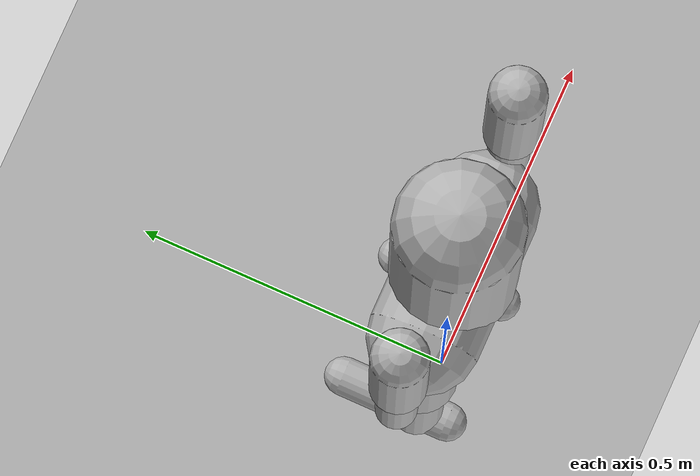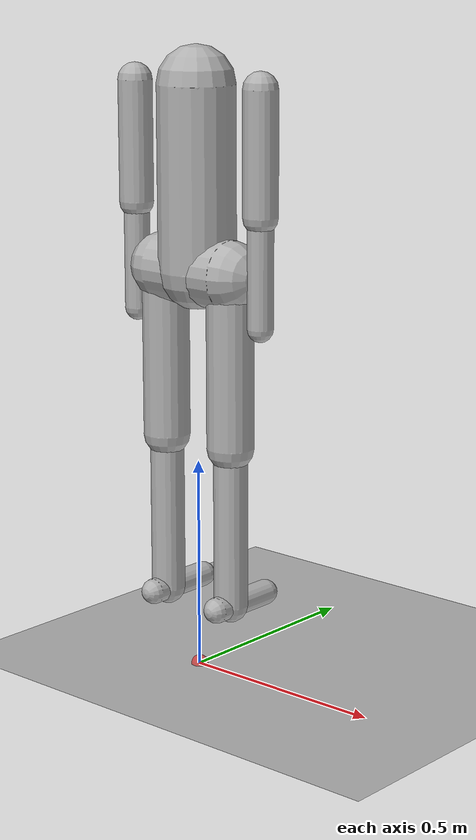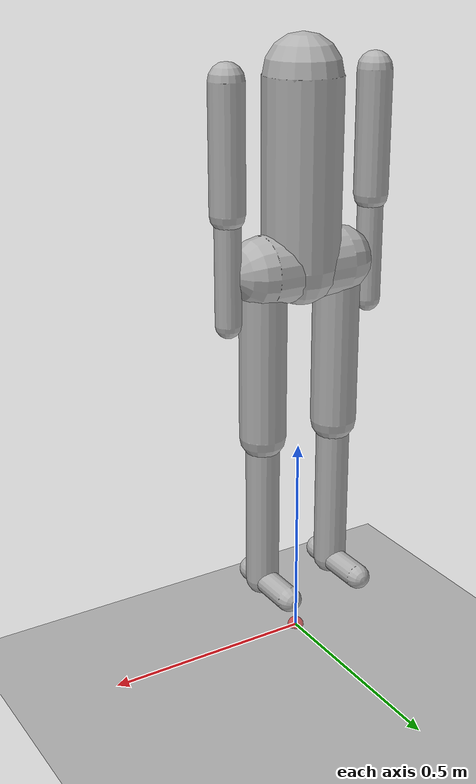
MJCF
<!--
  Simplified humanoid MJCF for sprint kinematic/kinetic analysis.
  Uses mocap bodies for BlazePose landmark tracking.
  Joint limits based on biomechanical ranges for sprinting.
-->
<mujoco model="humanoid_sprint">
  <compiler angle="radian" autolimits="true"/>

  <option timestep="0.002" integrator="implicit" gravity="0 0 -9.81">
    <flag contact="enable"/>
  </option>

  <default>
    <joint damping="5" armature="0.1" limited="true"/>
    <geom type="capsule" contype="1" conaffinity="1" friction="1 0.005 0.001"
          rgba="0.7 0.7 0.7 1" margin="0.001"/>
    <motor ctrllimited="true"/>
  </default>

  <asset>
    <texture type="2d" name="grid" builtin="checker" width="512" height="512"
             rgb1="0.1 0.1 0.1" rgb2="0.2 0.2 0.2"/>
    <material name="grid" texture="grid" texrepeat="8 8"/>
  </asset>

  <worldbody>
    <light directional="true" diffuse="0.8 0.8 0.8" pos="0 0 5" dir="0 0 -1"/>
    <geom name="floor" type="plane" size="50 50 0.1" material="grid" conaffinity="1"/>

    <!-- Pelvis / root body -->
    <body name="pelvis" pos="0 0 0.95">
      <freejoint name="root"/>
      <geom name="pelvis_geom" fromto="-.1 0 0 .1 0 0" size="0.08"/>
      <site name="left_hip_site" pos="-0.1 0 0"/>
      <site name="right_hip_site" pos="0.1 0 0"/>

      <!-- Torso -->
      <body name="torso" pos="0 0 0">
        <joint name="torso_flexion" type="hinge" axis="1 0 0" range="-0.5 0.8"/>
        <joint name="torso_lateral" type="hinge" axis="0 1 0" range="-0.3 0.3"/>
        <joint name="torso_rotation" type="hinge" axis="0 0 1" range="-0.8 0.8"/>
        <geom name="torso_geom" fromto="0 0 0 0 0 0.42" size="0.09"/>

        <!-- Left Shoulder -->
        <body name="left_upper_arm" pos="-0.19 0 0.42">
          <site name="left_shoulder_site" pos="0 0 0"/>
          <joint name="left_shoulder_flexion" type="hinge" axis="1 0 0" range="-2.6 0.8"/>
          <joint name="left_shoulder_abduction" type="hinge" axis="0 1 0" range="-0.3 3.1"/>
          <geom name="left_upper_arm_geom" fromto="0 0 0 0 0 -0.28" size="0.04"/>

          <body name="left_forearm" pos="0 0 -0.28">
            <site name="left_elbow_site" pos="0 0 0"/>
            <joint name="left_elbow_flexion" type="hinge" axis="1 0 0" range="-2.7 0"/>
            <geom name="left_forearm_geom" fromto="0 0 0 0 0 -0.25" size="0.03"/>
            <site name="left_wrist_site" pos="0 0 -0.25"/>
          </body>
        </body>

        <!-- Right Shoulder -->
        <body name="right_upper_arm" pos="0.19 0 0.42">
          <site name="right_shoulder_site" pos="0 0 0"/>
          <joint name="right_shoulder_flexion" type="hinge" axis="1 0 0" range="-2.6 0.8"/>
          <joint name="right_shoulder_abduction" type="hinge" axis="0 1 0" range="-3.1 0.3"/>
          <geom name="right_upper_arm_geom" fromto="0 0 0 0 0 -0.28" size="0.04"/>

          <body name="right_forearm" pos="0 0 -0.28">
            <site name="right_elbow_site" pos="0 0 0"/>
            <joint name="right_elbow_flexion" type="hinge" axis="1 0 0" range="-2.7 0"/>
            <geom name="right_forearm_geom" fromto="0 0 0 0 0 -0.25" size="0.03"/>
            <site name="right_wrist_site" pos="0 0 -0.25"/>
          </body>
        </body>
      </body>

      <!-- Left Leg -->
      <body name="left_thigh" pos="-0.1 0 0">
        <joint name="left_hip_flexion" type="hinge" axis="1 0 0" range="-0.4 2.1"/>
        <joint name="left_hip_abduction" type="hinge" axis="0 1 0" range="-0.5 0.3"/>
        <geom name="left_thigh_geom" fromto="0 0 0 0 0 -0.40" size="0.055"/>

        <body name="left_shank" pos="0 0 -0.40">
          <site name="left_knee_site" pos="0 0 0"/>
          <joint name="left_knee_flexion" type="hinge" axis="1 0 0" range="-2.6 0"/>
          <geom name="left_shank_geom" fromto="0 0 0 0 0 -0.38" size="0.04"/>

          <body name="left_foot" pos="0 0 -0.38">
            <site name="left_ankle_site" pos="0 0 0"/>
            <joint name="left_ankle_flexion" type="hinge" axis="1 0 0" range="-0.8 0.7"/>
            <geom name="left_foot_geom" fromto="0 -0.05 0 0 0.12 0" size="0.03"/>
          </body>
        </body>
      </body>

      <!-- Right Leg -->
      <body name="right_thigh" pos="0.1 0 0">
        <joint name="right_hip_flexion" type="hinge" axis="1 0 0" range="-0.4 2.1"/>
        <joint name="right_hip_abduction" type="hinge" axis="0 1 0" range="-0.3 0.5"/>
        <geom name="right_thigh_geom" fromto="0 0 0 0 0 -0.40" size="0.055"/>

        <body name="right_shank" pos="0 0 -0.40">
          <site name="right_knee_site" pos="0 0 0"/>
          <joint name="right_knee_flexion" type="hinge" axis="1 0 0" range="-2.6 0"/>
          <geom name="right_shank_geom" fromto="0 0 0 0 0 -0.38" size="0.04"/>

          <body name="right_foot" pos="0 0 -0.38">
            <site name="right_ankle_site" pos="0 0 0"/>
            <joint name="right_ankle_flexion" type="hinge" axis="1 0 0" range="-0.8 0.7"/>
            <geom name="right_foot_geom" fromto="0 -0.05 0 0 0.12 0" size="0.03"/>
          </body>
        </body>
      </body>
    </body>

    <!-- Mocap bodies for BlazePose landmark targets -->
    <body name="mocap_left_shoulder" mocap="true"><geom type="sphere" size="0.02" rgba="1 0 0 0.5" contype="0" conaffinity="0"/></body>
    <body name="mocap_right_shoulder" mocap="true"><geom type="sphere" size="0.02" rgba="1 0 0 0.5" contype="0" conaffinity="0"/></body>
    <body name="mocap_left_elbow" mocap="true"><geom type="sphere" size="0.02" rgba="0 1 0 0.5" contype="0" conaffinity="0"/></body>
    <body name="mocap_right_elbow" mocap="true"><geom type="sphere" size="0.02" rgba="0 1 0 0.5" contype="0" conaffinity="0"/></body>
    <body name="mocap_left_wrist" mocap="true"><geom type="sphere" size="0.02" rgba="0 0 1 0.5" contype="0" conaffinity="0"/></body>
    <body name="mocap_right_wrist" mocap="true"><geom type="sphere" size="0.02" rgba="0 0 1 0.5" contype="0" conaffinity="0"/></body>
    <body name="mocap_left_hip" mocap="true"><geom type="sphere" size="0.02" rgba="1 1 0 0.5" contype="0" conaffinity="0"/></body>
    <body name="mocap_right_hip" mocap="true"><geom type="sphere" size="0.02" rgba="1 1 0 0.5" contype="0" conaffinity="0"/></body>
    <body name="mocap_left_knee" mocap="true"><geom type="sphere" size="0.02" rgba="0 1 1 0.5" contype="0" conaffinity="0"/></body>
    <body name="mocap_right_knee" mocap="true"><geom type="sphere" size="0.02" rgba="0 1 1 0.5" contype="0" conaffinity="0"/></body>
    <body name="mocap_left_ankle" mocap="true"><geom type="sphere" size="0.02" rgba="1 0 1 0.5" contype="0" conaffinity="0"/></body>
    <body name="mocap_right_ankle" mocap="true"><geom type="sphere" size="0.02" rgba="1 0 1 0.5" contype="0" conaffinity="0"/></body>
  </worldbody>

  <actuator>
    <motor joint="torso_flexion" ctrlrange="-200 200"/>
    <motor joint="torso_lateral" ctrlrange="-100 100"/>
    <motor joint="torso_rotation" ctrlrange="-100 100"/>
    <motor joint="left_shoulder_flexion" ctrlrange="-80 80"/>
    <motor joint="left_shoulder_abduction" ctrlrange="-50 50"/>
    <motor joint="left_elbow_flexion" ctrlrange="-60 60"/>
    <motor joint="right_shoulder_flexion" ctrlrange="-80 80"/>
    <motor joint="right_shoulder_abduction" ctrlrange="-50 50"/>
    <motor joint="right_elbow_flexion" ctrlrange="-60 60"/>
    <motor joint="left_hip_flexion" ctrlrange="-300 300"/>
    <motor joint="left_hip_abduction" ctrlrange="-100 100"/>
    <motor joint="left_knee_flexion" ctrlrange="-300 300"/>
    <motor joint="left_ankle_flexion" ctrlrange="-150 150"/>
    <motor joint="right_hip_flexion" ctrlrange="-300 300"/>
    <motor joint="right_hip_abduction" ctrlrange="-100 100"/>
    <motor joint="right_knee_flexion" ctrlrange="-300 300"/>
    <motor joint="right_ankle_flexion" ctrlrange="-150 150"/>
  </actuator>
</mujoco>
